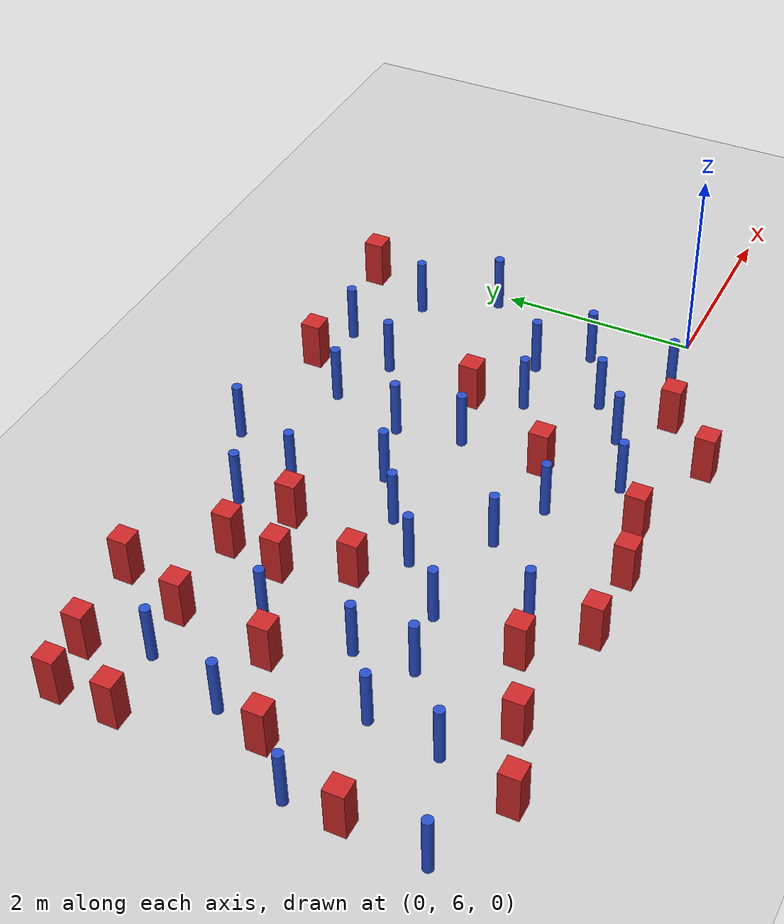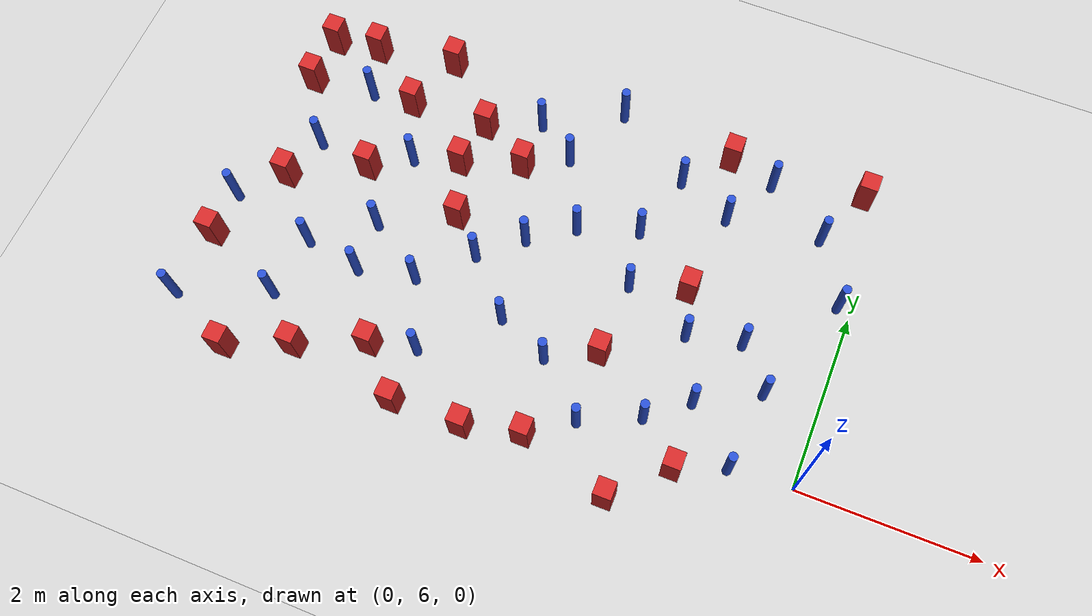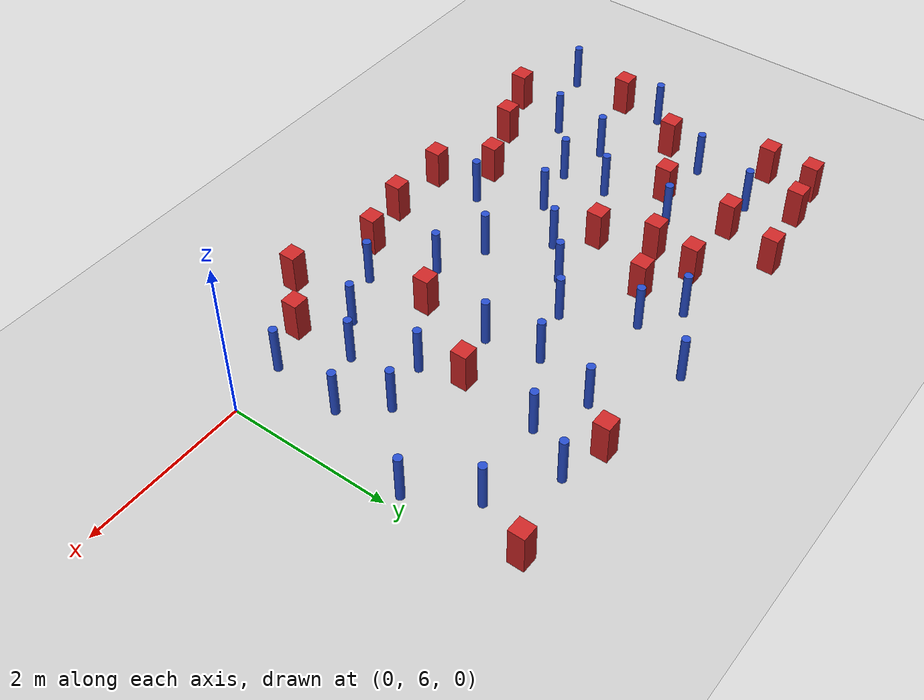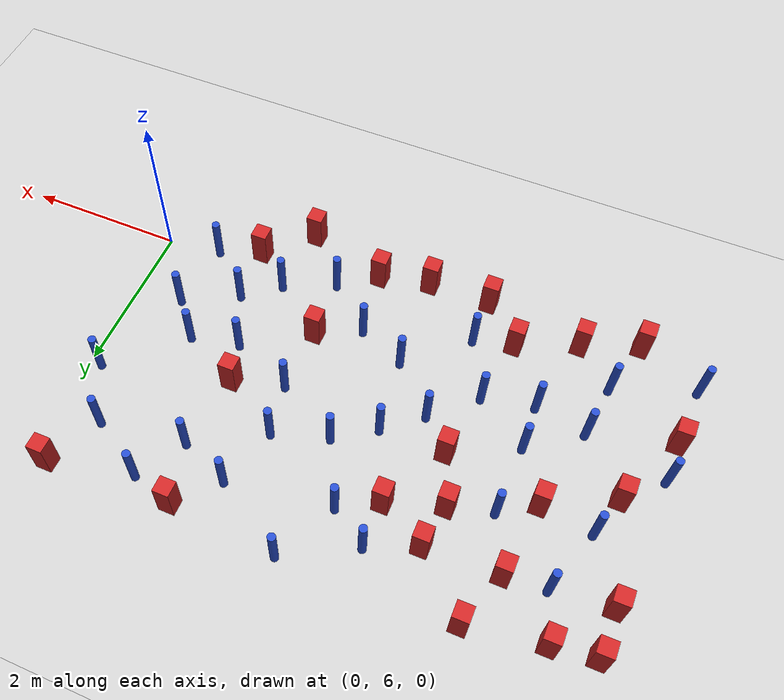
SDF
<sdf version="1.6">
 <world name="default">
  <model name="ground_plane">
   <static>1</static>
   <link name="link">
    <collision name="collision">
     <geometry><plane><normal>0 0 1</normal><size>100 100</size></plane></geometry>
     <surface><friction><ode><mu>100</mu><mu2>50</mu2></ode></friction></surface>
    </collision>
    <visual name="visual">
     <cast_shadows>0</cast_shadows>
     <geometry><plane><normal>0 0 1</normal><size>100 100</size></plane></geometry>
     <material>
      <ambient>1.0 1.0 1.0 1.0</ambient>
      <diffuse>0.8 0.8 0.8 1.0</diffuse>
      <specular>0.01 0.01 0.01 1.000000</specular>
     </material>
    </visual>
   </link>
  </model>
  <model name="pole_obstacle2">
   <static>true</static>
   <pose>-1.27373937846 6.47451242145 -9.47619616065e-06 5.49618799737e-07 2.36310414061e-07 -1.550905348e-07</pose>
   <link name="link">
    <pose>0 0 0.3 0 -0 0</pose>
    <inertial>
     <mass>1</mass>
     <inertia><ixx>0.145833</ixx><ixy>0</ixy><ixz>0</ixz><iyy>0.145833</iyy><iyz>0</iyz><izz>0.125</izz></inertia>
    </inertial>
    <collision name="collision">
     <geometry><cylinder><radius>0.05</radius><length>.6</length></cylinder></geometry>
    </collision>
    <visual name="visual">
     <geometry><cylinder><radius>0.05</radius><length>.6</length></cylinder></geometry>
     <material>
      <script><name>Gazebo/Blue</name><uri>file://media/materials/scripts/gazebo.material</uri></script>
     </material>
    </visual>
   </link>
  </model>
  <model name="square_post_obstacle11">
   <static>true</static>
   <pose>-1.24037410064 5.7349387828 -6.11067671241e-07 -5.50515727128e-06 -8.79689657224e-07 2.37013304536e-05</pose>
   <link name="link">
    <pose>0 0 0.25 0 -0 0</pose>
    <inertial>
     <mass>100</mass>
     <inertia>
      <ixx>0.166667</ixx>
      <ixy>0</ixy>
      <ixz>0</ixz>
      <iyy>0.166667</iyy>
      <iyz>0</iyz>
      <izz>0.166667</izz>
     </inertia>
    </inertial>
    <collision name="collision"><geometry><box><size>.2 .2 .5</size></box></geometry></collision>
    <visual name="visual">
     <geometry><box><size>.2 .2 .5</size></box></geometry>
     <material>
      <script><name>Gazebo/Red</name><uri>file://media/materials/scripts/gazebo.material</uri></script>
     </material>
    </visual>
   </link>
  </model>
  <model name="pole_obstacle18">
   <static>true</static>
   <pose>-6.02193255455 8.67930300951 -9.47619616065e-06 5.49618799737e-07 2.36310414065e-07 -1.55090534796e-07</pose>
   <link name="link">
    <pose>0 0 0.3 0 -0 0</pose>
    <inertial>
     <mass>1</mass>
     <inertia><ixx>0.145833</ixx><ixy>0</ixy><ixz>0</ixz><iyy>0.145833</iyy><iyz>0</iyz><izz>0.125</izz></inertia>
    </inertial>
    <collision name="collision">
     <geometry><cylinder><radius>0.05</radius><length>.6</length></cylinder></geometry>
    </collision>
    <visual name="visual">
     <geometry><cylinder><radius>0.05</radius><length>.6</length></cylinder></geometry>
     <material>
      <script><name>Gazebo/Blue</name><uri>file://media/materials/scripts/gazebo.material</uri></script>
     </material>
    </visual>
   </link>
  </model>
  <model name="square_post_obstacle17">
   <static>true</static>
   <pose>-4.68590935099 8.20599345179 -6.11067671241e-07 -5.50515727128e-06 -8.79689657224e-07 2.37013304536e-05</pose>
   <link name="link">
    <pose>0 0 0.25 0 -0 0</pose>
    <inertial>
     <mass>100</mass>
     <inertia>
      <ixx>0.166667</ixx>
      <ixy>0</ixy>
      <ixz>0</ixz>
      <iyy>0.166667</iyy>
      <iyz>0</iyz>
      <izz>0.166667</izz>
     </inertia>
    </inertial>
    <collision name="collision"><geometry><box><size>.2 .2 .5</size></box></geometry></collision>
    <visual name="visual">
     <geometry><box><size>.2 .2 .5</size></box></geometry>
     <material>
      <script><name>Gazebo/Red</name><uri>file://media/materials/scripts/gazebo.material</uri></script>
     </material>
    </visual>
   </link>
  </model>
  <model name="pole_obstacle30">
   <static>true</static>
   <pose>-0.986087353002 7.28924745294 -9.47619616065e-06 5.49618799737e-07 2.36310414066e-07 -1.55090534796e-07</pose>
   <link name="link">
    <pose>0 0 0.3 0 -0 0</pose>
    <inertial>
     <mass>1</mass>
     <inertia><ixx>0.145833</ixx><ixy>0</ixy><ixz>0</ixz><iyy>0.145833</iyy><iyz>0</iyz><izz>0.125</izz></inertia>
    </inertial>
    <collision name="collision">
     <geometry><cylinder><radius>0.05</radius><length>.6</length></cylinder></geometry>
    </collision>
    <visual name="visual">
     <geometry><cylinder><radius>0.05</radius><length>.6</length></cylinder></geometry>
     <material>
      <script><name>Gazebo/Blue</name><uri>file://media/materials/scripts/gazebo.material</uri></script>
     </material>
    </visual>
   </link>
  </model>
  <model name="pole_obstacle40">
   <static>true</static>
   <pose>-4.5843543024 6.70758315077 -9.47619616065e-06 5.49618799737e-07 2.36310414037e-07 -1.55090534814e-07</pose>
   <link name="link">
    <pose>0 0 0.3 0 -0 0</pose>
    <inertial>
     <mass>1</mass>
     <inertia><ixx>0.145833</ixx><ixy>0</ixy><ixz>0</ixz><iyy>0.145833</iyy><iyz>0</iyz><izz>0.125</izz></inertia>
    </inertial>
    <collision name="collision">
     <geometry><cylinder><radius>0.05</radius><length>.6</length></cylinder></geometry>
    </collision>
    <visual name="visual">
     <geometry><cylinder><radius>0.05</radius><length>.6</length></cylinder></geometry>
     <material>
      <script><name>Gazebo/Blue</name><uri>file://media/materials/scripts/gazebo.material</uri></script>
     </material>
    </visual>
   </link>
  </model>
  <model name="square_post_obstacle32">
   <static>true</static>
   <pose>-2.38413273631 6.63456158775 -6.11067671241e-07 -5.50515727128e-06 -8.79689657224e-07 2.37013304536e-05</pose>
   <link name="link">
    <pose>0 0 0.25 0 -0 0</pose>
    <inertial>
     <mass>100</mass>
     <inertia>
      <ixx>0.166667</ixx>
      <ixy>0</ixy>
      <ixz>0</ixz>
      <iyy>0.166667</iyy>
      <iyz>0</iyz>
      <izz>0.166667</izz>
     </inertia>
    </inertial>
    <collision name="collision"><geometry><box><size>.2 .2 .5</size></box></geometry></collision>
    <visual name="visual">
     <geometry><box><size>.2 .2 .5</size></box></geometry>
     <material>
      <script><name>Gazebo/Red</name><uri>file://media/materials/scripts/gazebo.material</uri></script>
     </material>
    </visual>
   </link>
  </model>
  <model name="pole_obstacle43">
   <static>true</static>
   <pose>-4.00826541032 9.01639126597 -9.47619616065e-06 5.49618799737e-07 2.36310414065e-07 -1.55090534796e-07</pose>
   <link name="link">
    <pose>0 0 0.3 0 -0 0</pose>
    <inertial>
     <mass>1</mass>
     <inertia><ixx>0.145833</ixx><ixy>0</ixy><ixz>0</ixz><iyy>0.145833</iyy><iyz>0</iyz><izz>0.125</izz></inertia>
    </inertial>
    <collision name="collision">
     <geometry><cylinder><radius>0.05</radius><length>.6</length></cylinder></geometry>
    </collision>
    <visual name="visual">
     <geometry><cylinder><radius>0.05</radius><length>.6</length></cylinder></geometry>
     <material>
      <script><name>Gazebo/Blue</name><uri>file://media/materials/scripts/gazebo.material</uri></script>
     </material>
    </visual>
   </link>
  </model>
  <model name="pole_obstacle45">
   <static>true</static>
   <pose>-2.33772393611 5.83602801582 -9.47619616065e-06 5.49618799738e-07 2.3631041406e-07 -1.55090534801e-07</pose>
   <link name="link">
    <pose>0 0 0.3 0 -0 0</pose>
    <inertial>
     <mass>1</mass>
     <inertia><ixx>0.145833</ixx><ixy>0</ixy><ixz>0</ixz><iyy>0.145833</iyy><iyz>0</iyz><izz>0.125</izz></inertia>
    </inertial>
    <collision name="collision">
     <geometry><cylinder><radius>0.05</radius><length>.6</length></cylinder></geometry>
    </collision>
    <visual name="visual">
     <geometry><cylinder><radius>0.05</radius><length>.6</length></cylinder></geometry>
     <material>
      <script><name>Gazebo/Blue</name><uri>file://media/materials/scripts/gazebo.material</uri></script>
     </material>
    </visual>
   </link>
  </model>
  <model name="square_post_obstacle35">
   <static>true</static>
   <pose>-6.45730989933 7.34702210767 -6.11067671241e-07 -5.50515727128e-06 -8.79689657224e-07 2.37013304536e-05</pose>
   <link name="link">
    <pose>0 0 0.25 0 -0 0</pose>
    <inertial>
     <mass>100</mass>
     <inertia>
      <ixx>0.166667</ixx>
      <ixy>0</ixy>
      <ixz>0</ixz>
      <iyy>0.166667</iyy>
      <iyz>0</iyz>
      <izz>0.166667</izz>
     </inertia>
    </inertial>
    <collision name="collision"><geometry><box><size>.2 .2 .5</size></box></geometry></collision>
    <visual name="visual">
     <geometry><box><size>.2 .2 .5</size></box></geometry>
     <material>
      <script><name>Gazebo/Red</name><uri>file://media/materials/scripts/gazebo.material</uri></script>
     </material>
    </visual>
   </link>
  </model>
  <model name="pole_obstacle46">
   <static>true</static>
   <pose>-0.701728406106 5.93705577795 -9.47619616065e-06 5.49618799737e-07 2.36310414065e-07 -1.55090534796e-07</pose>
   <link name="link">
    <pose>0 0 0.3 0 -0 0</pose>
    <inertial>
     <mass>1</mass>
     <inertia><ixx>0.145833</ixx><ixy>0</ixy><ixz>0</ixz><iyy>0.145833</iyy><iyz>0</iyz><izz>0.125</izz></inertia>
    </inertial>
    <collision name="collision">
     <geometry><cylinder><radius>0.05</radius><length>.6</length></cylinder></geometry>
    </collision>
    <visual name="visual">
     <geometry><cylinder><radius>0.05</radius><length>.6</length></cylinder></geometry>
     <material>
      <script><name>Gazebo/Blue</name><uri>file://media/materials/scripts/gazebo.material</uri></script>
     </material>
    </visual>
   </link>
  </model>
  <model name="pole_obstacle47">
   <static>true</static>
   <pose>-4.22434138194 5.95530116001 -9.47619616065e-06 5.49618799737e-07 2.36310414037e-07 -1.55090534814e-07</pose>
   <link name="link">
    <pose>0 0 0.3 0 -0 0</pose>
    <inertial>
     <mass>1</mass>
     <inertia><ixx>0.145833</ixx><ixy>0</ixy><ixz>0</ixz><iyy>0.145833</iyy><iyz>0</iyz><izz>0.125</izz></inertia>
    </inertial>
    <collision name="collision">
     <geometry><cylinder><radius>0.05</radius><length>.6</length></cylinder></geometry>
    </collision>
    <visual name="visual">
     <geometry><cylinder><radius>0.05</radius><length>.6</length></cylinder></geometry>
     <material>
      <script><name>Gazebo/Blue</name><uri>file://media/materials/scripts/gazebo.material</uri></script>
     </material>
    </visual>
   </link>
  </model>
  <model name="square_post_obstacle41">
   <static>true</static>
   <pose>-4.22934167548 5.3409236394 -6.11067671241e-07 -5.50515727128e-06 -8.79689657224e-07 2.37013304536e-05</pose>
   <link name="link">
    <pose>0 0 0.25 0 -0 0</pose>
    <inertial>
     <mass>100</mass>
     <inertia>
      <ixx>0.166667</ixx>
      <ixy>0</ixy>
      <ixz>0</ixz>
      <iyy>0.166667</iyy>
      <iyz>0</iyz>
      <izz>0.166667</izz>
     </inertia>
    </inertial>
    <collision name="collision"><geometry><box><size>.2 .2 .5</size></box></geometry></collision>
    <visual name="visual">
     <geometry><box><size>.2 .2 .5</size></box></geometry>
     <material>
      <script><name>Gazebo/Red</name><uri>file://media/materials/scripts/gazebo.material</uri></script>
     </material>
    </visual>
   </link>
  </model>
  <model name="square_post_obstacle43">
   <static>true</static>
   <pose>-1.73768950583 7.66000836821 -6.11067671241e-07 -5.50515727128e-06 -8.79689657224e-07 2.37013304536e-05</pose>
   <link name="link">
    <pose>0 0 0.25 0 -0 0</pose>
    <inertial>
     <mass>100</mass>
     <inertia>
      <ixx>0.166667</ixx>
      <ixy>0</ixy>
      <ixz>0</ixz>
      <iyy>0.166667</iyy>
      <iyz>0</iyz>
      <izz>0.166667</izz>
     </inertia>
    </inertial>
    <collision name="collision"><geometry><box><size>.2 .2 .5</size></box></geometry></collision>
    <visual name="visual">
     <geometry><box><size>.2 .2 .5</size></box></geometry>
     <material>
      <script><name>Gazebo/Red</name><uri>file://media/materials/scripts/gazebo.material</uri></script>
     </material>
    </visual>
   </link>
  </model>
  <model name="pole_obstacle57">
   <static>true</static>
   <pose>-2.47467554679 8.13380406721 -9.4761961606e-06 5.49618799729e-07 2.36310414e-07 -1.55090534824e-07</pose>
   <link name="link">
    <pose>0 0 0.3 0 -0 0</pose>
    <inertial>
     <mass>1</mass>
     <inertia><ixx>0.145833</ixx><ixy>0</ixy><ixz>0</ixz><iyy>0.145833</iyy><iyz>0</iyz><izz>0.125</izz></inertia>
    </inertial>
    <collision name="collision">
     <geometry><cylinder><radius>0.05</radius><length>.6</length></cylinder></geometry>
    </collision>
    <visual name="visual">
     <geometry><cylinder><radius>0.05</radius><length>.6</length></cylinder></geometry>
     <material>
      <script><name>Gazebo/Blue</name><uri>file://media/materials/scripts/gazebo.material</uri></script>
     </material>
    </visual>
   </link>
  </model>
  <model name="pole_obstacle58">
   <static>true</static>
   <pose>-5.24746552217 7.15168508453 -9.47619616065e-06 5.49618799737e-07 2.36310414037e-07 -1.55090534814e-07</pose>
   <link name="link">
    <pose>0 0 0.3 0 -0 0</pose>
    <inertial>
     <mass>1</mass>
     <inertia><ixx>0.145833</ixx><ixy>0</ixy><ixz>0</ixz><iyy>0.145833</iyy><iyz>0</iyz><izz>0.125</izz></inertia>
    </inertial>
    <collision name="collision">
     <geometry><cylinder><radius>0.05</radius><length>.6</length></cylinder></geometry>
    </collision>
    <visual name="visual">
     <geometry><cylinder><radius>0.05</radius><length>.6</length></cylinder></geometry>
     <material>
      <script><name>Gazebo/Blue</name><uri>file://media/materials/scripts/gazebo.material</uri></script>
     </material>
    </visual>
   </link>
  </model>
  <model name="pole_obstacle61">
   <static>true</static>
   <pose>-2.36133621329 7.47934851248 -9.47619616065e-06 5.49618799738e-07 2.3631041406e-07 -1.55090534801e-07</pose>
   <link name="link">
    <pose>0 0 0.3 0 -0 0</pose>
    <inertial>
     <mass>1</mass>
     <inertia><ixx>0.145833</ixx><ixy>0</ixy><ixz>0</ixz><iyy>0.145833</iyy><iyz>0</iyz><izz>0.125</izz></inertia>
    </inertial>
    <collision name="collision">
     <geometry><cylinder><radius>0.05</radius><length>.6</length></cylinder></geometry>
    </collision>
    <visual name="visual">
     <geometry><cylinder><radius>0.05</radius><length>.6</length></cylinder></geometry>
     <material>
      <script><name>Gazebo/Blue</name><uri>file://media/materials/scripts/gazebo.material</uri></script>
     </material>
    </visual>
   </link>
  </model>
  <model name="square_post_obstacle55">
   <static>true</static>
   <pose>-1.81534562341 9.38034840162 -6.11067671241e-07 -5.50515727128e-06 -8.79689657224e-07 2.37013304536e-05</pose>
   <link name="link">
    <pose>0 0 0.25 0 -0 0</pose>
    <inertial>
     <mass>100</mass>
     <inertia>
      <ixx>0.166667</ixx>
      <ixy>0</ixy>
      <ixz>0</ixz>
      <iyy>0.166667</iyy>
      <iyz>0</iyz>
      <izz>0.166667</izz>
     </inertia>
    </inertial>
    <collision name="collision"><geometry><box><size>.2 .2 .5</size></box></geometry></collision>
    <visual name="visual">
     <geometry><box><size>.2 .2 .5</size></box></geometry>
     <material>
      <script><name>Gazebo/Red</name><uri>file://media/materials/scripts/gazebo.material</uri></script>
     </material>
    </visual>
   </link>
  </model>
  <model name="pole_obstacle76">
   <static>true</static>
   <pose>-0.605853027116 6.83769955959 -9.47619616065e-06 5.49618799737e-07 2.36310414065e-07 -1.55090534796e-07</pose>
   <link name="link">
    <pose>0 0 0.3 0 -0 0</pose>
    <inertial>
     <mass>1</mass>
     <inertia><ixx>0.145833</ixx><ixy>0</ixy><ixz>0</ixz><iyy>0.145833</iyy><iyz>0</iyz><izz>0.125</izz></inertia>
    </inertial>
    <collision name="collision">
     <geometry><cylinder><radius>0.05</radius><length>.6</length></cylinder></geometry>
    </collision>
    <visual name="visual">
     <geometry><cylinder><radius>0.05</radius><length>.6</length></cylinder></geometry>
     <material>
      <script><name>Gazebo/Blue</name><uri>file://media/materials/scripts/gazebo.material</uri></script>
     </material>
    </visual>
   </link>
  </model>
  <model name="square_post_obstacle67">
   <static>true</static>
   <pose>-2.8042334505 5.50466194758 -6.11067671241e-07 -5.50515727128e-06 -8.79689657224e-07 2.37013304536e-05</pose>
   <link name="link">
    <pose>0 0 0.25 0 -0 0</pose>
    <inertial>
     <mass>100</mass>
     <inertia>
      <ixx>0.166667</ixx>
      <ixy>0</ixy>
      <ixz>0</ixz>
      <iyy>0.166667</iyy>
      <iyz>0</iyz>
      <izz>0.166667</izz>
     </inertia>
    </inertial>
    <collision name="collision"><geometry><box><size>.2 .2 .5</size></box></geometry></collision>
    <visual name="visual">
     <geometry><box><size>.2 .2 .5</size></box></geometry>
     <material>
      <script><name>Gazebo/Red</name><uri>file://media/materials/scripts/gazebo.material</uri></script>
     </material>
    </visual>
   </link>
  </model>
  <model name="square_post_obstacle69">
   <static>true</static>
   <pose>-6.71156678029 9.17823243434 -6.11067671241e-07 -5.50515727128e-06 -8.79689657224e-07 2.37013304536e-05</pose>
   <link name="link">
    <pose>0 0 0.25 0 -0 0</pose>
    <inertial>
     <mass>100</mass>
     <inertia>
      <ixx>0.166667</ixx>
      <ixy>0</ixy>
      <ixz>0</ixz>
      <iyy>0.166667</iyy>
      <iyz>0</iyz>
      <izz>0.166667</izz>
     </inertia>
    </inertial>
    <collision name="collision"><geometry><box><size>.2 .2 .5</size></box></geometry></collision>
    <visual name="visual">
     <geometry><box><size>.2 .2 .5</size></box></geometry>
     <material>
      <script><name>Gazebo/Red</name><uri>file://media/materials/scripts/gazebo.material</uri></script>
     </material>
    </visual>
   </link>
  </model>
  <model name="pole_obstacle85">
   <static>true</static>
   <pose>-6.29547758878 7.86416987468 -9.47619616065e-06 5.49618799737e-07 2.36310414037e-07 -1.55090534814e-07</pose>
   <link name="link">
    <pose>0 0 0.3 0 -0 0</pose>
    <inertial>
     <mass>1</mass>
     <inertia><ixx>0.145833</ixx><ixy>0</ixy><ixz>0</ixz><iyy>0.145833</iyy><iyz>0</iyz><izz>0.125</izz></inertia>
    </inertial>
    <collision name="collision">
     <geometry><cylinder><radius>0.05</radius><length>.6</length></cylinder></geometry>
    </collision>
    <visual name="visual">
     <geometry><cylinder><radius>0.05</radius><length>.6</length></cylinder></geometry>
     <material>
      <script><name>Gazebo/Blue</name><uri>file://media/materials/scripts/gazebo.material</uri></script>
     </material>
    </visual>
   </link>
  </model>
  <model name="pole_obstacle88">
   <static>true</static>
   <pose>-5.87139553473 6.68562503644 -9.47619616065e-06 5.49618799737e-07 2.36310414037e-07 -1.55090534814e-07</pose>
   <link name="link">
    <pose>0 0 0.3 0 -0 0</pose>
    <inertial>
     <mass>1</mass>
     <inertia><ixx>0.145833</ixx><ixy>0</ixy><ixz>0</ixz><iyy>0.145833</iyy><iyz>0</iyz><izz>0.125</izz></inertia>
    </inertial>
    <collision name="collision">
     <geometry><cylinder><radius>0.05</radius><length>.6</length></cylinder></geometry>
    </collision>
    <visual name="visual">
     <geometry><cylinder><radius>0.05</radius><length>.6</length></cylinder></geometry>
     <material>
      <script><name>Gazebo/Blue</name><uri>file://media/materials/scripts/gazebo.material</uri></script>
     </material>
    </visual>
   </link>
  </model>
  <model name="square_post_obstacle75">
   <static>true</static>
   <pose>-4.01108210036 8.43726493594 -6.11067671241e-07 -5.50515727128e-06 -8.79689657224e-07 2.37013304536e-05</pose>
   <link name="link">
    <pose>0 0 0.25 0 -0 0</pose>
    <inertial>
     <mass>100</mass>
     <inertia>
      <ixx>0.166667</ixx>
      <ixy>0</ixy>
      <ixz>0</ixz>
      <iyy>0.166667</iyy>
      <iyz>0</iyz>
      <izz>0.166667</izz>
     </inertia>
    </inertial>
    <collision name="collision"><geometry><box><size>.2 .2 .5</size></box></geometry></collision>
    <visual name="visual">
     <geometry><box><size>.2 .2 .5</size></box></geometry>
     <material>
      <script><name>Gazebo/Red</name><uri>file://media/materials/scripts/gazebo.material</uri></script>
     </material>
    </visual>
   </link>
  </model>
  <model name="pole_obstacle90">
   <static>true</static>
   <pose>-2.91865535767 6.36303844252 -9.47619616065e-06 5.49618799738e-07 2.3631041406e-07 -1.55090534801e-07</pose>
   <link name="link">
    <pose>0 0 0.3 0 -0 0</pose>
    <inertial>
     <mass>1</mass>
     <inertia><ixx>0.145833</ixx><ixy>0</ixy><ixz>0</ixz><iyy>0.145833</iyy><iyz>0</iyz><izz>0.125</izz></inertia>
    </inertial>
    <collision name="collision">
     <geometry><cylinder><radius>0.05</radius><length>.6</length></cylinder></geometry>
    </collision>
    <visual name="visual">
     <geometry><cylinder><radius>0.05</radius><length>.6</length></cylinder></geometry>
     <material>
      <script><name>Gazebo/Blue</name><uri>file://media/materials/scripts/gazebo.material</uri></script>
     </material>
    </visual>
   </link>
  </model>
  <model name="square_post_obstacle83">
   <static>true</static>
   <pose>-4.4459061725 7.56689934752 -6.11067671241e-07 -5.50515727128e-06 -8.79689657224e-07 2.37013304536e-05</pose>
   <link name="link">
    <pose>0 0 0.25 0 -0 0</pose>
    <inertial>
     <mass>100</mass>
     <inertia>
      <ixx>0.166667</ixx>
      <ixy>0</ixy>
      <ixz>0</ixz>
      <iyy>0.166667</iyy>
      <iyz>0</iyz>
      <izz>0.166667</izz>
     </inertia>
    </inertial>
    <collision name="collision"><geometry><box><size>.2 .2 .5</size></box></geometry></collision>
    <visual name="visual">
     <geometry><box><size>.2 .2 .5</size></box></geometry>
     <material>
      <script><name>Gazebo/Red</name><uri>file://media/materials/scripts/gazebo.material</uri></script>
     </material>
    </visual>
   </link>
  </model>
  <model name="square_post_obstacle84">
   <static>true</static>
   <pose>-5.46733025223 5.52036383033 -6.11067671241e-07 -5.50515727128e-06 -8.79689657224e-07 2.37013304536e-05</pose>
   <link name="link">
    <pose>0 0 0.25 0 -0 0</pose>
    <inertial>
     <mass>100</mass>
     <inertia>
      <ixx>0.166667</ixx>
      <ixy>0</ixy>
      <ixz>0</ixz>
      <iyy>0.166667</iyy>
      <iyz>0</iyz>
      <izz>0.166667</izz>
     </inertia>
    </inertial>
    <collision name="collision"><geometry><box><size>.2 .2 .5</size></box></geometry></collision>
    <visual name="visual">
     <geometry><box><size>.2 .2 .5</size></box></geometry>
     <material>
      <script><name>Gazebo/Red</name><uri>file://media/materials/scripts/gazebo.material</uri></script>
     </material>
    </visual>
   </link>
  </model>
  <model name="pole_obstacle97">
   <static>true</static>
   <pose>-3.54348126514 8.70346297036 -9.4761961606e-06 5.49618799729e-07 2.36310414e-07 -1.55090534824e-07</pose>
   <link name="link">
    <pose>0 0 0.3 0 -0 0</pose>
    <inertial>
     <mass>1</mass>
     <inertia><ixx>0.145833</ixx><ixy>0</ixy><ixz>0</ixz><iyy>0.145833</iyy><iyz>0</iyz><izz>0.125</izz></inertia>
    </inertial>
    <collision name="collision">
     <geometry><cylinder><radius>0.05</radius><length>.6</length></cylinder></geometry>
    </collision>
    <visual name="visual">
     <geometry><cylinder><radius>0.05</radius><length>.6</length></cylinder></geometry>
     <material>
      <script><name>Gazebo/Blue</name><uri>file://media/materials/scripts/gazebo.material</uri></script>
     </material>
    </visual>
   </link>
  </model>
  <model name="pole_obstacle98">
   <static>true</static>
   <pose>-2.2495205438 8.90477725074 -9.4761961606e-06 5.49618799729e-07 2.36310414e-07 -1.55090534824e-07</pose>
   <link name="link">
    <pose>0 0 0.3 0 -0 0</pose>
    <inertial>
     <mass>1</mass>
     <inertia><ixx>0.145833</ixx><ixy>0</ixy><ixz>0</ixz><iyy>0.145833</iyy><iyz>0</iyz><izz>0.125</izz></inertia>
    </inertial>
    <collision name="collision">
     <geometry><cylinder><radius>0.05</radius><length>.6</length></cylinder></geometry>
    </collision>
    <visual name="visual">
     <geometry><cylinder><radius>0.05</radius><length>.6</length></cylinder></geometry>
     <material>
      <script><name>Gazebo/Blue</name><uri>file://media/materials/scripts/gazebo.material</uri></script>
     </material>
    </visual>
   </link>
  </model>
  <model name="square_post_obstacle90">
   <static>true</static>
   <pose>-6.72986892471 8.59711826728 -6.11067671241e-07 -5.50515727128e-06 -8.79689657224e-07 2.37013304536e-05</pose>
   <link name="link">
    <pose>0 0 0.25 0 -0 0</pose>
    <inertial>
     <mass>100</mass>
     <inertia>
      <ixx>0.166667</ixx>
      <ixy>0</ixy>
      <ixz>0</ixz>
      <iyy>0.166667</iyy>
      <iyz>0</iyz>
      <izz>0.166667</izz>
     </inertia>
    </inertial>
    <collision name="collision"><geometry><box><size>.2 .2 .5</size></box></geometry></collision>
    <visual name="visual">
     <geometry><box><size>.2 .2 .5</size></box></geometry>
     <material>
      <script><name>Gazebo/Red</name><uri>file://media/materials/scripts/gazebo.material</uri></script>
     </material>
    </visual>
   </link>
  </model>
  <model name="square_post_obstacle97">
   <static>true</static>
   <pose>-5.27149477102 9.40647156723 -6.11067671241e-07 -5.50515727128e-06 -8.79689657224e-07 2.37013304536e-05</pose>
   <link name="link">
    <pose>0 0 0.25 0 -0 0</pose>
    <inertial>
     <mass>100</mass>
     <inertia>
      <ixx>0.166667</ixx>
      <ixy>0</ixy>
      <ixz>0</ixz>
      <iyy>0.166667</iyy>
      <iyz>0</iyz>
      <izz>0.166667</izz>
     </inertia>
    </inertial>
    <collision name="collision"><geometry><box><size>.2 .2 .5</size></box></geometry></collision>
    <visual name="visual">
     <geometry><box><size>.2 .2 .5</size></box></geometry>
     <material>
      <script><name>Gazebo/Red</name><uri>file://media/materials/scripts/gazebo.material</uri></script>
     </material>
    </visual>
   </link>
  </model>
  <model name="square_post_obstacle107">
   <static>true</static>
   <pose>-4.71953364589 5.8332937426 -6.11067671241e-07 -5.50515727128e-06 -8.79689657224e-07 2.37013304536e-05</pose>
   <link name="link">
    <pose>0 0 0.25 0 -0 0</pose>
    <inertial>
     <mass>100</mass>
     <inertia>
      <ixx>0.166667</ixx>
      <ixy>0</ixy>
      <ixz>0</ixz>
      <iyy>0.166667</iyy>
      <iyz>0</iyz>
      <izz>0.166667</izz>
     </inertia>
    </inertial>
    <collision name="collision"><geometry><box><size>.2 .2 .5</size></box></geometry></collision>
    <visual name="visual">
     <geometry><box><size>.2 .2 .5</size></box></geometry>
     <material>
      <script><name>Gazebo/Red</name><uri>file://media/materials/scripts/gazebo.material</uri></script>
     </material>
    </visual>
   </link>
  </model>
  <model name="pole_obstacle113">
   <static>true</static>
   <pose>-1.28049278326 9.23452140449 -9.47619616065e-06 5.49618799737e-07 2.36310414046e-07 -1.55090534809e-07</pose>
   <link name="link">
    <pose>0 0 0.3 0 -0 0</pose>
    <inertial>
     <mass>1</mass>
     <inertia><ixx>0.145833</ixx><ixy>0</ixy><ixz>0</ixz><iyy>0.145833</iyy><iyz>0</iyz><izz>0.125</izz></inertia>
    </inertial>
    <collision name="collision">
     <geometry><cylinder><radius>0.05</radius><length>.6</length></cylinder></geometry>
    </collision>
    <visual name="visual">
     <geometry><cylinder><radius>0.05</radius><length>.6</length></cylinder></geometry>
     <material>
      <script><name>Gazebo/Blue</name><uri>file://media/materials/scripts/gazebo.material</uri></script>
     </material>
    </visual>
   </link>
  </model>
  <model name="pole_obstacle115">
   <static>true</static>
   <pose>-1.59091988621 7.15933796181 -9.47619616065e-06 5.49618799737e-07 2.36310414061e-07 -1.550905348e-07</pose>
   <link name="link">
    <pose>0 0 0.3 0 -0 0</pose>
    <inertial>
     <mass>1</mass>
     <inertia><ixx>0.145833</ixx><ixy>0</ixy><ixz>0</ixz><iyy>0.145833</iyy><iyz>0</iyz><izz>0.125</izz></inertia>
    </inertial>
    <collision name="collision">
     <geometry><cylinder><radius>0.05</radius><length>.6</length></cylinder></geometry>
    </collision>
    <visual name="visual">
     <geometry><cylinder><radius>0.05</radius><length>.6</length></cylinder></geometry>
     <material>
      <script><name>Gazebo/Blue</name><uri>file://media/materials/scripts/gazebo.material</uri></script>
     </material>
    </visual>
   </link>
  </model>
  <model name="square_post_obstacle121">
   <static>true</static>
   <pose>-5.51098300927 8.71865128093 -6.11067671241e-07 -5.50515727128e-06 -8.79689657224e-07 2.37013304536e-05</pose>
   <link name="link">
    <pose>0 0 0.25 0 -0 0</pose>
    <inertial>
     <mass>100</mass>
     <inertia>
      <ixx>0.166667</ixx>
      <ixy>0</ixy>
      <ixz>0</ixz>
      <iyy>0.166667</iyy>
      <iyz>0</iyz>
      <izz>0.166667</izz>
     </inertia>
    </inertial>
    <collision name="collision"><geometry><box><size>.2 .2 .5</size></box></geometry></collision>
    <visual name="visual">
     <geometry><box><size>.2 .2 .5</size></box></geometry>
     <material>
      <script><name>Gazebo/Red</name><uri>file://media/materials/scripts/gazebo.material</uri></script>
     </material>
    </visual>
   </link>
  </model>
  <model name="pole_obstacle122">
   <static>true</static>
   <pose>-5.21860558994 8.0494555893 -9.47619616065e-06 5.49618799737e-07 2.36310414048e-07 -1.55090534806e-07</pose>
   <link name="link">
    <pose>0 0 0.3 0 -0 0</pose>
    <inertial>
     <mass>1</mass>
     <inertia><ixx>0.145833</ixx><ixy>0</ixy><ixz>0</ixz><iyy>0.145833</iyy><iyz>0</iyz><izz>0.125</izz></inertia>
    </inertial>
    <collision name="collision">
     <geometry><cylinder><radius>0.05</radius><length>.6</length></cylinder></geometry>
    </collision>
    <visual name="visual">
     <geometry><cylinder><radius>0.05</radius><length>.6</length></cylinder></geometry>
     <material>
      <script><name>Gazebo/Blue</name><uri>file://media/materials/scripts/gazebo.material</uri></script>
     </material>
    </visual>
   </link>
  </model>
  <model name="pole_obstacle127">
   <static>true</static>
   <pose>-0.567981195405 8.78385492635 -9.47619616065e-06 5.49618799737e-07 2.36310414038e-07 -1.55090534813e-07</pose>
   <link name="link">
    <pose>0 0 0.3 0 -0 0</pose>
    <inertial>
     <mass>1</mass>
     <inertia><ixx>0.145833</ixx><ixy>0</ixy><ixz>0</ixz><iyy>0.145833</iyy><iyz>0</iyz><izz>0.125</izz></inertia>
    </inertial>
    <collision name="collision">
     <geometry><cylinder><radius>0.05</radius><length>.6</length></cylinder></geometry>
    </collision>
    <visual name="visual">
     <geometry><cylinder><radius>0.05</radius><length>.6</length></cylinder></geometry>
     <material>
      <script><name>Gazebo/Blue</name><uri>file://media/materials/scripts/gazebo.material</uri></script>
     </material>
    </visual>
   </link>
  </model>
  <model name="pole_obstacle141">
   <static>true</static>
   <pose>-1.62777038817 8.63836758353 -9.47619616065e-06 5.49618799737e-07 2.36310414046e-07 -1.55090534809e-07</pose>
   <link name="link">
    <pose>0 0 0.3 0 -0 0</pose>
    <inertial>
     <mass>1</mass>
     <inertia><ixx>0.145833</ixx><ixy>0</ixy><ixz>0</ixz><iyy>0.145833</iyy><iyz>0</iyz><izz>0.125</izz></inertia>
    </inertial>
    <collision name="collision">
     <geometry><cylinder><radius>0.05</radius><length>.6</length></cylinder></geometry>
    </collision>
    <visual name="visual">
     <geometry><cylinder><radius>0.05</radius><length>.6</length></cylinder></geometry>
     <material>
      <script><name>Gazebo/Blue</name><uri>file://media/materials/scripts/gazebo.material</uri></script>
     </material>
    </visual>
   </link>
  </model>
  <model name="pole_obstacle144">
   <static>true</static>
   <pose>-6.96002213365 5.6004375834 -9.47619616065e-06 5.49618799737e-07 2.36310414037e-07 -1.55090534814e-07</pose>
   <link name="link">
    <pose>0 0 0.3 0 -0 0</pose>
    <inertial>
     <mass>1</mass>
     <inertia><ixx>0.145833</ixx><ixy>0</ixy><ixz>0</ixz><iyy>0.145833</iyy><iyz>0</iyz><izz>0.125</izz></inertia>
    </inertial>
    <collision name="collision">
     <geometry><cylinder><radius>0.05</radius><length>.6</length></cylinder></geometry>
    </collision>
    <visual name="visual">
     <geometry><cylinder><radius>0.05</radius><length>.6</length></cylinder></geometry>
     <material>
      <script><name>Gazebo/Blue</name><uri>file://media/materials/scripts/gazebo.material</uri></script>
     </material>
    </visual>
   </link>
  </model>
  <model name="pole_obstacle149">
   <static>true</static>
   <pose>-3.62979587147 7.57936274381 -9.4761961606e-06 5.49618799729e-07 2.36310414006e-07 -1.55090534822e-07</pose>
   <link name="link">
    <pose>0 0 0.3 0 -0 0</pose>
    <inertial>
     <mass>1</mass>
     <inertia><ixx>0.145833</ixx><ixy>0</ixy><ixz>0</ixz><iyy>0.145833</iyy><iyz>0</iyz><izz>0.125</izz></inertia>
    </inertial>
    <collision name="collision">
     <geometry><cylinder><radius>0.05</radius><length>.6</length></cylinder></geometry>
    </collision>
    <visual name="visual">
     <geometry><cylinder><radius>0.05</radius><length>.6</length></cylinder></geometry>
     <material>
      <script><name>Gazebo/Blue</name><uri>file://media/materials/scripts/gazebo.material</uri></script>
     </material>
    </visual>
   </link>
  </model>
  <model name="square_post_obstacle143">
   <static>true</static>
   <pose>-3.44238816283 5.3581728267 -6.11067671241e-07 -5.50515727128e-06 -8.79689657224e-07 2.37013304536e-05</pose>
   <link name="link">
    <pose>0 0 0.25 0 -0 0</pose>
    <inertial>
     <mass>100</mass>
     <inertia>
      <ixx>0.166667</ixx>
      <ixy>0</ixy>
      <ixz>0</ixz>
      <iyy>0.166667</iyy>
      <iyz>0</iyz>
      <izz>0.166667</izz>
     </inertia>
    </inertial>
    <collision name="collision"><geometry><box><size>.2 .2 .5</size></box></geometry></collision>
    <visual name="visual">
     <geometry><box><size>.2 .2 .5</size></box></geometry>
     <material>
      <script><name>Gazebo/Red</name><uri>file://media/materials/scripts/gazebo.material</uri></script>
     </material>
    </visual>
   </link>
  </model>
  <model name="square_post_obstacle151">
   <static>true</static>
   <pose>-5.64072029961 7.7728437648 -6.11067671241e-07 -5.50515727128e-06 -8.79689657224e-07 2.37013304536e-05</pose>
   <link name="link">
    <pose>0 0 0.25 0 -0 0</pose>
    <inertial>
     <mass>100</mass>
     <inertia>
      <ixx>0.166667</ixx>
      <ixy>0</ixy>
      <ixz>0</ixz>
      <iyy>0.166667</iyy>
      <iyz>0</iyz>
      <izz>0.166667</izz>
     </inertia>
    </inertial>
    <collision name="collision"><geometry><box><size>.2 .2 .5</size></box></geometry></collision>
    <visual name="visual">
     <geometry><box><size>.2 .2 .5</size></box></geometry>
     <material>
      <script><name>Gazebo/Red</name><uri>file://media/materials/scripts/gazebo.material</uri></script>
     </material>
    </visual>
   </link>
  </model>
  <model name="pole_obstacle156">
   <static>true</static>
   <pose>-5.22592514007 6.56893278335 -9.47619616065e-06 5.49618799737e-07 2.36310414037e-07 -1.55090534814e-07</pose>
   <link name="link">
    <pose>0 0 0.3 0 -0 0</pose>
    <inertial>
     <mass>1</mass>
     <inertia><ixx>0.145833</ixx><ixy>0</ixy><ixz>0</ixz><iyy>0.145833</iyy><iyz>0</iyz><izz>0.125</izz></inertia>
    </inertial>
    <collision name="collision">
     <geometry><cylinder><radius>0.05</radius><length>.6</length></cylinder></geometry>
    </collision>
    <visual name="visual">
     <geometry><cylinder><radius>0.05</radius><length>.6</length></cylinder></geometry>
     <material>
      <script><name>Gazebo/Blue</name><uri>file://media/materials/scripts/gazebo.material</uri></script>
     </material>
    </visual>
   </link>
  </model>
  <model name="square_post_obstacle154">
   <static>true</static>
   <pose>-6.16788572436 5.24516597195 -6.11067671241e-07 -5.50515727128e-06 -8.79689657224e-07 2.37013304536e-05</pose>
   <link name="link">
    <pose>0 0 0.25 0 -0 0</pose>
    <inertial>
     <mass>100</mass>
     <inertia>
      <ixx>0.166667</ixx>
      <ixy>0</ixy>
      <ixz>0</ixz>
      <iyy>0.166667</iyy>
      <iyz>0</iyz>
      <izz>0.166667</izz>
     </inertia>
    </inertial>
    <collision name="collision"><geometry><box><size>.2 .2 .5</size></box></geometry></collision>
    <visual name="visual">
     <geometry><box><size>.2 .2 .5</size></box></geometry>
     <material>
      <script><name>Gazebo/Red</name><uri>file://media/materials/scripts/gazebo.material</uri></script>
     </material>
    </visual>
   </link>
  </model>
  <model name="pole_obstacle166">
   <static>true</static>
   <pose>-4.07319670761 7.1980786257 -9.47619616065e-06 5.49618799737e-07 2.36310414037e-07 -1.55090534814e-07</pose>
   <link name="link">
    <pose>0 0 0.3 0 -0 0</pose>
    <inertial>
     <mass>1</mass>
     <inertia><ixx>0.145833</ixx><ixy>0</ixy><ixz>0</ixz><iyy>0.145833</iyy><iyz>0</iyz><izz>0.125</izz></inertia>
    </inertial>
    <collision name="collision">
     <geometry><cylinder><radius>0.05</radius><length>.6</length></cylinder></geometry>
    </collision>
    <visual name="visual">
     <geometry><cylinder><radius>0.05</radius><length>.6</length></cylinder></geometry>
     <material>
      <script><name>Gazebo/Blue</name><uri>file://media/materials/scripts/gazebo.material</uri></script>
     </material>
    </visual>
   </link>
  </model>
  <model name="square_post_obstacle166">
   <static>true</static>
   <pose>-1.78175297084 5.20069650452 -6.11067671241e-07 -5.50515727128e-06 -8.79689657224e-07 2.37013304536e-05</pose>
   <link name="link">
    <pose>0 0 0.25 0 -0 0</pose>
    <inertial>
     <mass>100</mass>
     <inertia>
      <ixx>0.166667</ixx>
      <ixy>0</ixy>
      <ixz>0</ixz>
      <iyy>0.166667</iyy>
      <iyz>0</iyz>
      <izz>0.166667</izz>
     </inertia>
    </inertial>
    <collision name="collision"><geometry><box><size>.2 .2 .5</size></box></geometry></collision>
    <visual name="visual">
     <geometry><box><size>.2 .2 .5</size></box></geometry>
     <material>
      <script><name>Gazebo/Red</name><uri>file://media/materials/scripts/gazebo.material</uri></script>
     </material>
    </visual>
   </link>
  </model>
  <model name="square_post_obstacle175">
   <static>true</static>
   <pose>-6.19199940592 9.2531308153 -6.11067671241e-07 -5.50515727128e-06 -8.79689657224e-07 2.37013304536e-05</pose>
   <link name="link">
    <pose>0 0 0.25 0 -0 0</pose>
    <inertial>
     <mass>100</mass>
     <inertia>
      <ixx>0.166667</ixx>
      <ixy>0</ixy>
      <ixz>0</ixz>
      <iyy>0.166667</iyy>
      <iyz>0</iyz>
      <izz>0.166667</izz>
     </inertia>
    </inertial>
    <collision name="collision"><geometry><box><size>.2 .2 .5</size></box></geometry></collision>
    <visual name="visual">
     <geometry><box><size>.2 .2 .5</size></box></geometry>
     <material>
      <script><name>Gazebo/Red</name><uri>file://media/materials/scripts/gazebo.material</uri></script>
     </material>
    </visual>
   </link>
  </model>
  <model name="pole_obstacle183">
   <static>true</static>
   <pose>-1.70204707818 6.12693764345 -9.47619616065e-06 5.49618799737e-07 2.36310414061e-07 -1.550905348e-07</pose>
   <link name="link">
    <pose>0 0 0.3 0 -0 0</pose>
    <inertial>
     <mass>1</mass>
     <inertia><ixx>0.145833</ixx><ixy>0</ixy><ixz>0</ixz><iyy>0.145833</iyy><iyz>0</iyz><izz>0.125</izz></inertia>
    </inertial>
    <collision name="collision">
     <geometry><cylinder><radius>0.05</radius><length>.6</length></cylinder></geometry>
    </collision>
    <visual name="visual">
     <geometry><cylinder><radius>0.05</radius><length>.6</length></cylinder></geometry>
     <material>
      <script><name>Gazebo/Blue</name><uri>file://media/materials/scripts/gazebo.material</uri></script>
     </material>
    </visual>
   </link>
  </model>
  <model name="square_post_obstacle202">
   <static>true</static>
   <pose>-6.89016846421 6.38902591328 -6.11067671241e-07 -5.50515727128e-06 -8.79689657224e-07 2.37013304536e-05</pose>
   <link name="link">
    <pose>0 0 0.25 0 -0 0</pose>
    <inertial>
     <mass>100</mass>
     <inertia>
      <ixx>0.166667</ixx>
      <ixy>0</ixy>
      <ixz>0</ixz>
      <iyy>0.166667</iyy>
      <iyz>0</iyz>
      <izz>0.166667</izz>
     </inertia>
    </inertial>
    <collision name="collision"><geometry><box><size>.2 .2 .5</size></box></geometry></collision>
    <visual name="visual">
     <geometry><box><size>.2 .2 .5</size></box></geometry>
     <material>
      <script><name>Gazebo/Red</name><uri>file://media/materials/scripts/gazebo.material</uri></script>
     </material>
    </visual>
   </link>
  </model>
  <model name="square_post_obstacle204">
   <static>true</static>
   <pose>-0.262802388053 9.46575349117 -6.11067671241e-07 -5.50515727128e-06 -8.79689657224e-07 2.37013304536e-05</pose>
   <link name="link">
    <pose>0 0 0.25 0 -0 0</pose>
    <inertial>
     <mass>100</mass>
     <inertia>
      <ixx>0.166667</ixx>
      <ixy>0</ixy>
      <ixz>0</ixz>
      <iyy>0.166667</iyy>
      <iyz>0</iyz>
      <izz>0.166667</izz>
     </inertia>
    </inertial>
    <collision name="collision"><geometry><box><size>.2 .2 .5</size></box></geometry></collision>
    <visual name="visual">
     <geometry><box><size>.2 .2 .5</size></box></geometry>
     <material>
      <script><name>Gazebo/Red</name><uri>file://media/materials/scripts/gazebo.material</uri></script>
     </material>
    </visual>
   </link>
  </model>
  <model name="square_post_obstacle207">
   <static>true</static>
   <pose>-4.59691772643 8.75247044948 -6.11067671241e-07 -5.50515727128e-06 -8.79689657224e-07 2.37013304536e-05</pose>
   <link name="link">
    <pose>0 0 0.25 0 -0 0</pose>
    <inertial>
     <mass>100</mass>
     <inertia>
      <ixx>0.166667</ixx>
      <ixy>0</ixy>
      <ixz>0</ixz>
      <iyy>0.166667</iyy>
      <iyz>0</iyz>
      <izz>0.166667</izz>
     </inertia>
    </inertial>
    <collision name="collision"><geometry><box><size>.2 .2 .5</size></box></geometry></collision>
    <visual name="visual">
     <geometry><box><size>.2 .2 .5</size></box></geometry>
     <material>
      <script><name>Gazebo/Red</name><uri>file://media/materials/scripts/gazebo.material</uri></script>
     </material>
    </visual>
   </link>
  </model>
  <model name="pole_obstacle194">
   <static>true</static>
   <pose>-3.16277633395 9.48350799899 -9.4761961606e-06 5.49618799729e-07 2.36310414e-07 -1.55090534824e-07</pose>
   <link name="link">
    <pose>0 0 0.3 0 -0 0</pose>
    <inertial>
     <mass>1</mass>
     <inertia><ixx>0.145833</ixx><ixy>0</ixy><ixz>0</ixz><iyy>0.145833</iyy><iyz>0</iyz><izz>0.125</izz></inertia>
    </inertial>
    <collision name="collision">
     <geometry><cylinder><radius>0.05</radius><length>.6</length></cylinder></geometry>
    </collision>
    <visual name="visual">
     <geometry><cylinder><radius>0.05</radius><length>.6</length></cylinder></geometry>
     <material>
      <script><name>Gazebo/Blue</name><uri>file://media/materials/scripts/gazebo.material</uri></script>
     </material>
    </visual>
   </link>
  </model>
  <model name="pole_obstacle197">
   <static>true</static>
   <pose>-0.158422650225 8.07720526166 -9.47619616065e-06 5.49618799737e-07 2.36310414038e-07 -1.55090534815e-07</pose>
   <link name="link">
    <pose>0 0 0.3 0 -0 0</pose>
    <inertial>
     <mass>1</mass>
     <inertia><ixx>0.145833</ixx><ixy>0</ixy><ixz>0</ixz><iyy>0.145833</iyy><iyz>0</iyz><izz>0.125</izz></inertia>
    </inertial>
    <collision name="collision">
     <geometry><cylinder><radius>0.05</radius><length>.6</length></cylinder></geometry>
    </collision>
    <visual name="visual">
     <geometry><cylinder><radius>0.05</radius><length>.6</length></cylinder></geometry>
     <material>
      <script><name>Gazebo/Blue</name><uri>file://media/materials/scripts/gazebo.material</uri></script>
     </material>
    </visual>
   </link>
  </model>
  <model name="pole_obstacle202">
   <static>true</static>
   <pose>-6.88787882697 6.91523757994 -9.47619616065e-06 5.49618799737e-07 2.36310414037e-07 -1.55090534814e-07</pose>
   <link name="link">
    <pose>0 0 0.3 0 -0 0</pose>
    <inertial>
     <mass>1</mass>
     <inertia><ixx>0.145833</ixx><ixy>0</ixy><ixz>0</ixz><iyy>0.145833</iyy><iyz>0</iyz><izz>0.125</izz></inertia>
    </inertial>
    <collision name="collision">
     <geometry><cylinder><radius>0.05</radius><length>.6</length></cylinder></geometry>
    </collision>
    <visual name="visual">
     <geometry><cylinder><radius>0.05</radius><length>.6</length></cylinder></geometry>
     <material>
      <script><name>Gazebo/Blue</name><uri>file://media/materials/scripts/gazebo.material</uri></script>
     </material>
    </visual>
   </link>
  </model>
  <model name="pole_obstacle204">
   <static>true</static>
   <pose>-3.51295306497 6.61746899769 -9.47619616065e-06 5.49618799738e-07 2.3631041406e-07 -1.55090534801e-07</pose>
   <link name="link">
    <pose>0 0 0.3 0 -0 0</pose>
    <inertial>
     <mass>1</mass>
     <inertia><ixx>0.145833</ixx><ixy>0</ixy><ixz>0</ixz><iyy>0.145833</iyy><iyz>0</iyz><izz>0.125</izz></inertia>
    </inertial>
    <collision name="collision">
     <geometry><cylinder><radius>0.05</radius><length>.6</length></cylinder></geometry>
    </collision>
    <visual name="visual">
     <geometry><cylinder><radius>0.05</radius><length>.6</length></cylinder></geometry>
     <material>
      <script><name>Gazebo/Blue</name><uri>file://media/materials/scripts/gazebo.material</uri></script>
     </material>
    </visual>
   </link>
  </model>
  <model name="pole_obstacle210">
   <static>true</static>
   <pose>-3.1486038073 7.91554188324 -9.4761961606e-06 5.49618799729e-07 2.36310414006e-07 -1.55090534822e-07</pose>
   <link name="link">
    <pose>0 0 0.3 0 -0 0</pose>
    <inertial>
     <mass>1</mass>
     <inertia><ixx>0.145833</ixx><ixy>0</ixy><ixz>0</ixz><iyy>0.145833</iyy><iyz>0</iyz><izz>0.125</izz></inertia>
    </inertial>
    <collision name="collision">
     <geometry><cylinder><radius>0.05</radius><length>.6</length></cylinder></geometry>
    </collision>
    <visual name="visual">
     <geometry><cylinder><radius>0.05</radius><length>.6</length></cylinder></geometry>
     <material>
      <script><name>Gazebo/Blue</name><uri>file://media/materials/scripts/gazebo.material</uri></script>
     </material>
    </visual>
   </link>
  </model>
  <model name="pole_obstacle226">
   <static>true</static>
   <pose>-5.96388023356 5.98255297166 -9.47619616065e-06 5.49618799737e-07 2.36310414037e-07 -1.55090534814e-07</pose>
   <link name="link">
    <pose>0 0 0.3 0 -0 0</pose>
    <inertial>
     <mass>1</mass>
     <inertia><ixx>0.145833</ixx><ixy>0</ixy><ixz>0</ixz><iyy>0.145833</iyy><iyz>0</iyz><izz>0.125</izz></inertia>
    </inertial>
    <collision name="collision">
     <geometry><cylinder><radius>0.05</radius><length>.6</length></cylinder></geometry>
    </collision>
    <visual name="visual">
     <geometry><cylinder><radius>0.05</radius><length>.6</length></cylinder></geometry>
     <material>
      <script><name>Gazebo/Blue</name><uri>file://media/materials/scripts/gazebo.material</uri></script>
     </material>
    </visual>
   </link>
  </model>
 </world>
</sdf>
